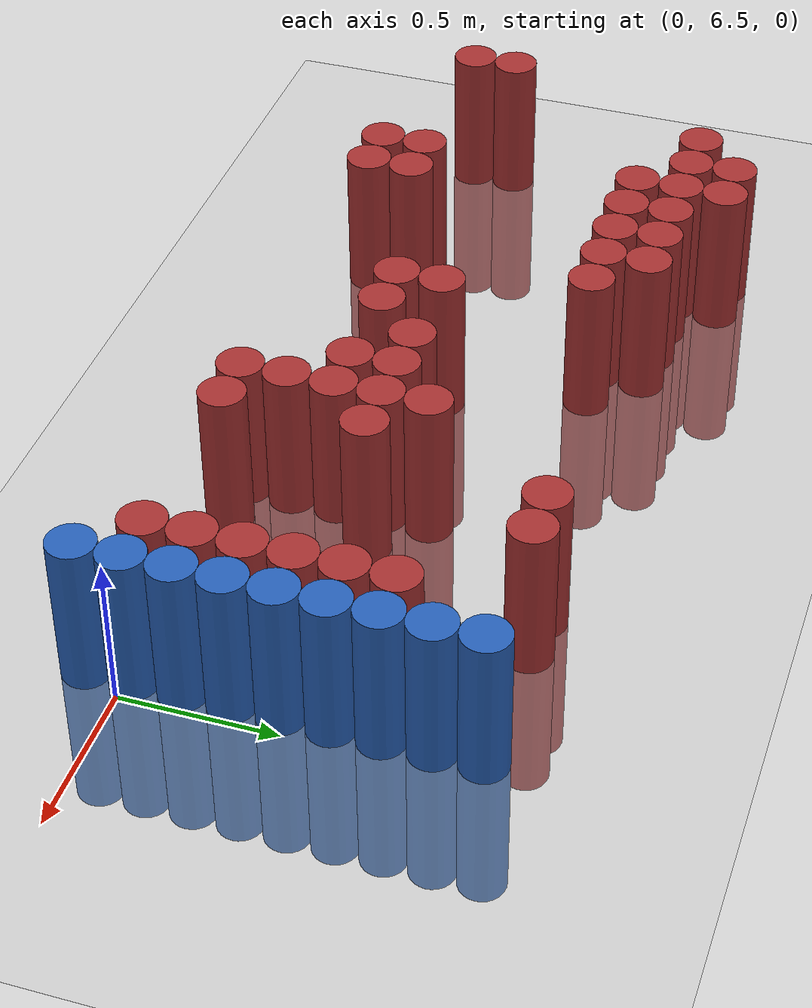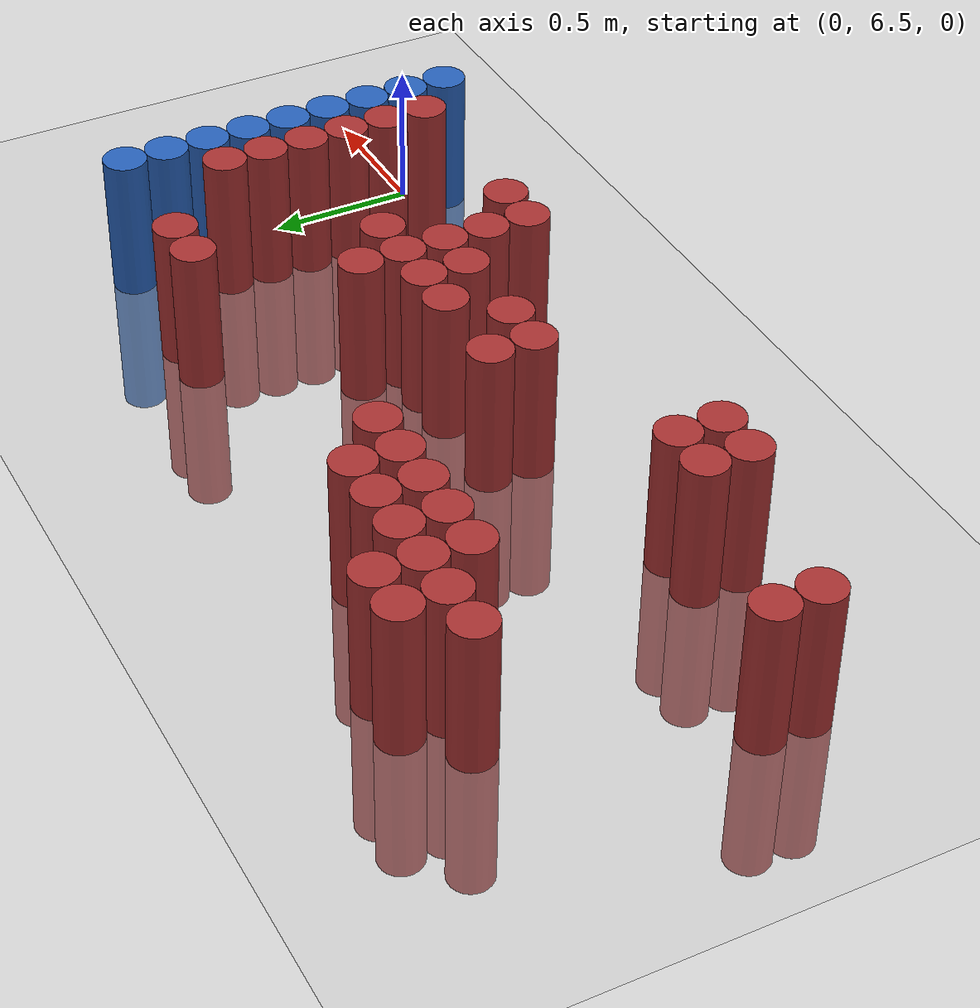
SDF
<sdf version="1.6">
 <world name="default">
  <model name="ground_plane">
   <static>1</static>
   <link name="link">
    <collision name="collision">
     <geometry><plane><normal>0 0 1</normal><size>100 100</size></plane></geometry>
     <surface><friction><ode><mu>100</mu><mu2>50</mu2></ode></friction></surface>
    </collision>
    <visual name="visual">
     <cast_shadows>0</cast_shadows>
     <geometry><plane><normal>0 0 1</normal><size>100 100</size></plane></geometry>
     <material>
      <script><uri>file://media/materials/scripts/gazebo.material</uri><name>Gazebo/Grey</name></script>
     </material>
    </visual>
   </link>
  </model>
  <model name="unit_cylinder_160">
   <static>1</static>
   <pose>-2.925000 6.675000 0.000000 0.000000 0.000000 0.000000</pose>
   <link name="link">
    <inertial>
     <mass>1</mass>
     <inertia><ixx>0.145833</ixx><ixy>0</ixy><ixz>0</ixz><iyy>0.145833</iyy><iyz>0</iyz><izz>0.125</izz></inertia>
    </inertial>
    <collision name="collision">
     <geometry><cylinder><radius>0.075000</radius><length>1</length></cylinder></geometry>
    </collision>
    <visual name="visual">
     <geometry><cylinder><radius>0.075000</radius><length>1</length></cylinder></geometry>
     <material>
      <ambient>0.648000 0.192000 0.192000 1</ambient>
      <diffuse>0.648000 0.192000 0.192000 1</diffuse>
     </material>
     <material>
      <script><name>Gazebo/Grey</name><uri>file://media/materials/scripts/gazebo.material</uri></script>
     </material>
    </visual>
   </link>
  </model>
  <model name="unit_cylinder_161">
   <static>1</static>
   <pose>-2.925000 6.825000 0.000000 0.000000 0.000000 0.000000</pose>
   <link name="link">
    <inertial>
     <mass>1</mass>
     <inertia><ixx>0.145833</ixx><ixy>0</ixy><ixz>0</ixz><iyy>0.145833</iyy><iyz>0</iyz><izz>0.125</izz></inertia>
    </inertial>
    <collision name="collision">
     <geometry><cylinder><radius>0.075000</radius><length>1</length></cylinder></geometry>
    </collision>
    <visual name="visual">
     <geometry><cylinder><radius>0.075000</radius><length>1</length></cylinder></geometry>
     <material>
      <ambient>0.648000 0.192000 0.192000 1</ambient>
      <diffuse>0.648000 0.192000 0.192000 1</diffuse>
     </material>
     <material>
      <script><name>Gazebo/Grey</name><uri>file://media/materials/scripts/gazebo.material</uri></script>
     </material>
    </visual>
   </link>
  </model>
  <model name="unit_cylinder_166">
   <static>1</static>
   <pose>-2.625000 7.575000 0.000000 0.000000 0.000000 0.000000</pose>
   <link name="link">
    <inertial>
     <mass>1</mass>
     <inertia><ixx>0.145833</ixx><ixy>0</ixy><ixz>0</ixz><iyy>0.145833</iyy><iyz>0</iyz><izz>0.125</izz></inertia>
    </inertial>
    <collision name="collision">
     <geometry><cylinder><radius>0.075000</radius><length>1</length></cylinder></geometry>
    </collision>
    <visual name="visual">
     <geometry><cylinder><radius>0.075000</radius><length>1</length></cylinder></geometry>
     <material>
      <ambient>0.648000 0.192000 0.192000 1</ambient>
      <diffuse>0.648000 0.192000 0.192000 1</diffuse>
     </material>
     <material>
      <script><name>Gazebo/Grey</name><uri>file://media/materials/scripts/gazebo.material</uri></script>
     </material>
    </visual>
   </link>
  </model>
  <model name="unit_cylinder_167">
   <static>1</static>
   <pose>-2.475000 7.575000 0.000000 0.000000 0.000000 0.000000</pose>
   <link name="link">
    <inertial>
     <mass>1</mass>
     <inertia><ixx>0.145833</ixx><ixy>0</ixy><ixz>0</ixz><iyy>0.145833</iyy><iyz>0</iyz><izz>0.125</izz></inertia>
    </inertial>
    <collision name="collision">
     <geometry><cylinder><radius>0.075000</radius><length>1</length></cylinder></geometry>
    </collision>
    <visual name="visual">
     <geometry><cylinder><radius>0.075000</radius><length>1</length></cylinder></geometry>
     <material>
      <ambient>0.648000 0.192000 0.192000 1</ambient>
      <diffuse>0.648000 0.192000 0.192000 1</diffuse>
     </material>
     <material>
      <script><name>Gazebo/Grey</name><uri>file://media/materials/scripts/gazebo.material</uri></script>
     </material>
    </visual>
   </link>
  </model>
  <model name="unit_cylinder_168">
   <static>1</static>
   <pose>-2.475000 7.725000 0.000000 0.000000 0.000000 0.000000</pose>
   <link name="link">
    <inertial>
     <mass>1</mass>
     <inertia><ixx>0.145833</ixx><ixy>0</ixy><ixz>0</ixz><iyy>0.145833</iyy><iyz>0</iyz><izz>0.125</izz></inertia>
    </inertial>
    <collision name="collision">
     <geometry><cylinder><radius>0.075000</radius><length>1</length></cylinder></geometry>
    </collision>
    <visual name="visual">
     <geometry><cylinder><radius>0.075000</radius><length>1</length></cylinder></geometry>
     <material>
      <ambient>0.648000 0.192000 0.192000 1</ambient>
      <diffuse>0.648000 0.192000 0.192000 1</diffuse>
     </material>
     <material>
      <script><name>Gazebo/Grey</name><uri>file://media/materials/scripts/gazebo.material</uri></script>
     </material>
    </visual>
   </link>
  </model>
  <model name="unit_cylinder_171">
   <static>1</static>
   <pose>-2.325000 6.525000 0.000000 0.000000 0.000000 0.000000</pose>
   <link name="link">
    <inertial>
     <mass>1</mass>
     <inertia><ixx>0.145833</ixx><ixy>0</ixy><ixz>0</ixz><iyy>0.145833</iyy><iyz>0</iyz><izz>0.125</izz></inertia>
    </inertial>
    <collision name="collision">
     <geometry><cylinder><radius>0.075000</radius><length>1</length></cylinder></geometry>
    </collision>
    <visual name="visual">
     <geometry><cylinder><radius>0.075000</radius><length>1</length></cylinder></geometry>
     <material>
      <ambient>0.648000 0.192000 0.192000 1</ambient>
      <diffuse>0.648000 0.192000 0.192000 1</diffuse>
     </material>
     <material>
      <script><name>Gazebo/Grey</name><uri>file://media/materials/scripts/gazebo.material</uri></script>
     </material>
    </visual>
   </link>
  </model>
  <model name="unit_cylinder_172">
   <static>1</static>
   <pose>-2.325000 6.675000 0.000000 0.000000 0.000000 0.000000</pose>
   <link name="link">
    <inertial>
     <mass>1</mass>
     <inertia><ixx>0.145833</ixx><ixy>0</ixy><ixz>0</ixz><iyy>0.145833</iyy><iyz>0</iyz><izz>0.125</izz></inertia>
    </inertial>
    <collision name="collision">
     <geometry><cylinder><radius>0.075000</radius><length>1</length></cylinder></geometry>
    </collision>
    <visual name="visual">
     <geometry><cylinder><radius>0.075000</radius><length>1</length></cylinder></geometry>
     <material>
      <ambient>0.648000 0.192000 0.192000 1</ambient>
      <diffuse>0.648000 0.192000 0.192000 1</diffuse>
     </material>
     <material>
      <script><name>Gazebo/Grey</name><uri>file://media/materials/scripts/gazebo.material</uri></script>
     </material>
    </visual>
   </link>
  </model>
  <model name="unit_cylinder_173">
   <static>1</static>
   <pose>-2.325000 7.425000 0.000000 0.000000 0.000000 0.000000</pose>
   <link name="link">
    <inertial>
     <mass>1</mass>
     <inertia><ixx>0.145833</ixx><ixy>0</ixy><ixz>0</ixz><iyy>0.145833</iyy><iyz>0</iyz><izz>0.125</izz></inertia>
    </inertial>
    <collision name="collision">
     <geometry><cylinder><radius>0.075000</radius><length>1</length></cylinder></geometry>
    </collision>
    <visual name="visual">
     <geometry><cylinder><radius>0.075000</radius><length>1</length></cylinder></geometry>
     <material>
      <ambient>0.648000 0.192000 0.192000 1</ambient>
      <diffuse>0.648000 0.192000 0.192000 1</diffuse>
     </material>
     <material>
      <script><name>Gazebo/Grey</name><uri>file://media/materials/scripts/gazebo.material</uri></script>
     </material>
    </visual>
   </link>
  </model>
  <model name="unit_cylinder_174">
   <static>1</static>
   <pose>-2.325000 7.575000 0.000000 0.000000 0.000000 0.000000</pose>
   <link name="link">
    <inertial>
     <mass>1</mass>
     <inertia><ixx>0.145833</ixx><ixy>0</ixy><ixz>0</ixz><iyy>0.145833</iyy><iyz>0</iyz><izz>0.125</izz></inertia>
    </inertial>
    <collision name="collision">
     <geometry><cylinder><radius>0.075000</radius><length>1</length></cylinder></geometry>
    </collision>
    <visual name="visual">
     <geometry><cylinder><radius>0.075000</radius><length>1</length></cylinder></geometry>
     <material>
      <ambient>0.648000 0.192000 0.192000 1</ambient>
      <diffuse>0.648000 0.192000 0.192000 1</diffuse>
     </material>
     <material>
      <script><name>Gazebo/Grey</name><uri>file://media/materials/scripts/gazebo.material</uri></script>
     </material>
    </visual>
   </link>
  </model>
  <model name="unit_cylinder_175">
   <static>1</static>
   <pose>-2.325000 7.725000 0.000000 0.000000 0.000000 0.000000</pose>
   <link name="link">
    <inertial>
     <mass>1</mass>
     <inertia><ixx>0.145833</ixx><ixy>0</ixy><ixz>0</ixz><iyy>0.145833</iyy><iyz>0</iyz><izz>0.125</izz></inertia>
    </inertial>
    <collision name="collision">
     <geometry><cylinder><radius>0.075000</radius><length>1</length></cylinder></geometry>
    </collision>
    <visual name="visual">
     <geometry><cylinder><radius>0.075000</radius><length>1</length></cylinder></geometry>
     <material>
      <ambient>0.648000 0.192000 0.192000 1</ambient>
      <diffuse>0.648000 0.192000 0.192000 1</diffuse>
     </material>
     <material>
      <script><name>Gazebo/Grey</name><uri>file://media/materials/scripts/gazebo.material</uri></script>
     </material>
    </visual>
   </link>
  </model>
  <model name="unit_cylinder_177">
   <static>1</static>
   <pose>-2.175000 6.525000 0.000000 0.000000 0.000000 0.000000</pose>
   <link name="link">
    <inertial>
     <mass>1</mass>
     <inertia><ixx>0.145833</ixx><ixy>0</ixy><ixz>0</ixz><iyy>0.145833</iyy><iyz>0</iyz><izz>0.125</izz></inertia>
    </inertial>
    <collision name="collision">
     <geometry><cylinder><radius>0.075000</radius><length>1</length></cylinder></geometry>
    </collision>
    <visual name="visual">
     <geometry><cylinder><radius>0.075000</radius><length>1</length></cylinder></geometry>
     <material>
      <ambient>0.648000 0.192000 0.192000 1</ambient>
      <diffuse>0.648000 0.192000 0.192000 1</diffuse>
     </material>
     <material>
      <script><name>Gazebo/Grey</name><uri>file://media/materials/scripts/gazebo.material</uri></script>
     </material>
    </visual>
   </link>
  </model>
  <model name="unit_cylinder_178">
   <static>1</static>
   <pose>-2.175000 6.675000 0.000000 0.000000 0.000000 0.000000</pose>
   <link name="link">
    <inertial>
     <mass>1</mass>
     <inertia><ixx>0.145833</ixx><ixy>0</ixy><ixz>0</ixz><iyy>0.145833</iyy><iyz>0</iyz><izz>0.125</izz></inertia>
    </inertial>
    <collision name="collision">
     <geometry><cylinder><radius>0.075000</radius><length>1</length></cylinder></geometry>
    </collision>
    <visual name="visual">
     <geometry><cylinder><radius>0.075000</radius><length>1</length></cylinder></geometry>
     <material>
      <ambient>0.648000 0.192000 0.192000 1</ambient>
      <diffuse>0.648000 0.192000 0.192000 1</diffuse>
     </material>
     <material>
      <script><name>Gazebo/Grey</name><uri>file://media/materials/scripts/gazebo.material</uri></script>
     </material>
    </visual>
   </link>
  </model>
  <model name="unit_cylinder_179">
   <static>1</static>
   <pose>-2.175000 7.425000 0.000000 0.000000 0.000000 0.000000</pose>
   <link name="link">
    <inertial>
     <mass>1</mass>
     <inertia><ixx>0.145833</ixx><ixy>0</ixy><ixz>0</ixz><iyy>0.145833</iyy><iyz>0</iyz><izz>0.125</izz></inertia>
    </inertial>
    <collision name="collision">
     <geometry><cylinder><radius>0.075000</radius><length>1</length></cylinder></geometry>
    </collision>
    <visual name="visual">
     <geometry><cylinder><radius>0.075000</radius><length>1</length></cylinder></geometry>
     <material>
      <ambient>0.648000 0.192000 0.192000 1</ambient>
      <diffuse>0.648000 0.192000 0.192000 1</diffuse>
     </material>
     <material>
      <script><name>Gazebo/Grey</name><uri>file://media/materials/scripts/gazebo.material</uri></script>
     </material>
    </visual>
   </link>
  </model>
  <model name="unit_cylinder_180">
   <static>1</static>
   <pose>-2.175000 7.575000 0.000000 0.000000 0.000000 0.000000</pose>
   <link name="link">
    <inertial>
     <mass>1</mass>
     <inertia><ixx>0.145833</ixx><ixy>0</ixy><ixz>0</ixz><iyy>0.145833</iyy><iyz>0</iyz><izz>0.125</izz></inertia>
    </inertial>
    <collision name="collision">
     <geometry><cylinder><radius>0.075000</radius><length>1</length></cylinder></geometry>
    </collision>
    <visual name="visual">
     <geometry><cylinder><radius>0.075000</radius><length>1</length></cylinder></geometry>
     <material>
      <ambient>0.648000 0.192000 0.192000 1</ambient>
      <diffuse>0.648000 0.192000 0.192000 1</diffuse>
     </material>
     <material>
      <script><name>Gazebo/Grey</name><uri>file://media/materials/scripts/gazebo.material</uri></script>
     </material>
    </visual>
   </link>
  </model>
  <model name="unit_cylinder_182">
   <static>1</static>
   <pose>-2.025000 7.425000 0.000000 0.000000 0.000000 0.000000</pose>
   <link name="link">
    <inertial>
     <mass>1</mass>
     <inertia><ixx>0.145833</ixx><ixy>0</ixy><ixz>0</ixz><iyy>0.145833</iyy><iyz>0</iyz><izz>0.125</izz></inertia>
    </inertial>
    <collision name="collision">
     <geometry><cylinder><radius>0.075000</radius><length>1</length></cylinder></geometry>
    </collision>
    <visual name="visual">
     <geometry><cylinder><radius>0.075000</radius><length>1</length></cylinder></geometry>
     <material>
      <ambient>0.648000 0.192000 0.192000 1</ambient>
      <diffuse>0.648000 0.192000 0.192000 1</diffuse>
     </material>
     <material>
      <script><name>Gazebo/Grey</name><uri>file://media/materials/scripts/gazebo.material</uri></script>
     </material>
    </visual>
   </link>
  </model>
  <model name="unit_cylinder_183">
   <static>1</static>
   <pose>-2.025000 7.575000 0.000000 0.000000 0.000000 0.000000</pose>
   <link name="link">
    <inertial>
     <mass>1</mass>
     <inertia><ixx>0.145833</ixx><ixy>0</ixy><ixz>0</ixz><iyy>0.145833</iyy><iyz>0</iyz><izz>0.125</izz></inertia>
    </inertial>
    <collision name="collision">
     <geometry><cylinder><radius>0.075000</radius><length>1</length></cylinder></geometry>
    </collision>
    <visual name="visual">
     <geometry><cylinder><radius>0.075000</radius><length>1</length></cylinder></geometry>
     <material>
      <ambient>0.648000 0.192000 0.192000 1</ambient>
      <diffuse>0.648000 0.192000 0.192000 1</diffuse>
     </material>
     <material>
      <script><name>Gazebo/Grey</name><uri>file://media/materials/scripts/gazebo.material</uri></script>
     </material>
    </visual>
   </link>
  </model>
  <model name="unit_cylinder_185">
   <static>1</static>
   <pose>-1.875000 7.425000 0.000000 0.000000 0.000000 0.000000</pose>
   <link name="link">
    <inertial>
     <mass>1</mass>
     <inertia><ixx>0.145833</ixx><ixy>0</ixy><ixz>0</ixz><iyy>0.145833</iyy><iyz>0</iyz><izz>0.125</izz></inertia>
    </inertial>
    <collision name="collision">
     <geometry><cylinder><radius>0.075000</radius><length>1</length></cylinder></geometry>
    </collision>
    <visual name="visual">
     <geometry><cylinder><radius>0.075000</radius><length>1</length></cylinder></geometry>
     <material>
      <ambient>0.648000 0.192000 0.192000 1</ambient>
      <diffuse>0.648000 0.192000 0.192000 1</diffuse>
     </material>
     <material>
      <script><name>Gazebo/Grey</name><uri>file://media/materials/scripts/gazebo.material</uri></script>
     </material>
    </visual>
   </link>
  </model>
  <model name="unit_cylinder_186">
   <static>1</static>
   <pose>-1.875000 7.575000 0.000000 0.000000 0.000000 0.000000</pose>
   <link name="link">
    <inertial>
     <mass>1</mass>
     <inertia><ixx>0.145833</ixx><ixy>0</ixy><ixz>0</ixz><iyy>0.145833</iyy><iyz>0</iyz><izz>0.125</izz></inertia>
    </inertial>
    <collision name="collision">
     <geometry><cylinder><radius>0.075000</radius><length>1</length></cylinder></geometry>
    </collision>
    <visual name="visual">
     <geometry><cylinder><radius>0.075000</radius><length>1</length></cylinder></geometry>
     <material>
      <ambient>0.648000 0.192000 0.192000 1</ambient>
      <diffuse>0.648000 0.192000 0.192000 1</diffuse>
     </material>
     <material>
      <script><name>Gazebo/Grey</name><uri>file://media/materials/scripts/gazebo.material</uri></script>
     </material>
    </visual>
   </link>
  </model>
  <model name="unit_cylinder_189">
   <static>1</static>
   <pose>-1.725000 7.425000 0.000000 0.000000 0.000000 0.000000</pose>
   <link name="link">
    <inertial>
     <mass>1</mass>
     <inertia><ixx>0.145833</ixx><ixy>0</ixy><ixz>0</ixz><iyy>0.145833</iyy><iyz>0</iyz><izz>0.125</izz></inertia>
    </inertial>
    <collision name="collision">
     <geometry><cylinder><radius>0.075000</radius><length>1</length></cylinder></geometry>
    </collision>
    <visual name="visual">
     <geometry><cylinder><radius>0.075000</radius><length>1</length></cylinder></geometry>
     <material>
      <ambient>0.648000 0.192000 0.192000 1</ambient>
      <diffuse>0.648000 0.192000 0.192000 1</diffuse>
     </material>
     <material>
      <script><name>Gazebo/Grey</name><uri>file://media/materials/scripts/gazebo.material</uri></script>
     </material>
    </visual>
   </link>
  </model>
  <model name="unit_cylinder_193">
   <static>1</static>
   <pose>-1.575000 6.825000 0.000000 0.000000 0.000000 0.000000</pose>
   <link name="link">
    <inertial>
     <mass>1</mass>
     <inertia><ixx>0.145833</ixx><ixy>0</ixy><ixz>0</ixz><iyy>0.145833</iyy><iyz>0</iyz><izz>0.125</izz></inertia>
    </inertial>
    <collision name="collision">
     <geometry><cylinder><radius>0.075000</radius><length>1</length></cylinder></geometry>
    </collision>
    <visual name="visual">
     <geometry><cylinder><radius>0.075000</radius><length>1</length></cylinder></geometry>
     <material>
      <ambient>0.648000 0.192000 0.192000 1</ambient>
      <diffuse>0.648000 0.192000 0.192000 1</diffuse>
     </material>
     <material>
      <script><name>Gazebo/Grey</name><uri>file://media/materials/scripts/gazebo.material</uri></script>
     </material>
    </visual>
   </link>
  </model>
  <model name="unit_cylinder_194">
   <static>1</static>
   <pose>-1.575000 6.975000 0.000000 0.000000 0.000000 0.000000</pose>
   <link name="link">
    <inertial>
     <mass>1</mass>
     <inertia><ixx>0.145833</ixx><ixy>0</ixy><ixz>0</ixz><iyy>0.145833</iyy><iyz>0</iyz><izz>0.125</izz></inertia>
    </inertial>
    <collision name="collision">
     <geometry><cylinder><radius>0.075000</radius><length>1</length></cylinder></geometry>
    </collision>
    <visual name="visual">
     <geometry><cylinder><radius>0.075000</radius><length>1</length></cylinder></geometry>
     <material>
      <ambient>0.648000 0.192000 0.192000 1</ambient>
      <diffuse>0.648000 0.192000 0.192000 1</diffuse>
     </material>
     <material>
      <script><name>Gazebo/Grey</name><uri>file://media/materials/scripts/gazebo.material</uri></script>
     </material>
    </visual>
   </link>
  </model>
  <model name="unit_cylinder_196">
   <static>1</static>
   <pose>-1.425000 6.825000 0.000000 0.000000 0.000000 0.000000</pose>
   <link name="link">
    <inertial>
     <mass>1</mass>
     <inertia><ixx>0.145833</ixx><ixy>0</ixy><ixz>0</ixz><iyy>0.145833</iyy><iyz>0</iyz><izz>0.125</izz></inertia>
    </inertial>
    <collision name="collision">
     <geometry><cylinder><radius>0.075000</radius><length>1</length></cylinder></geometry>
    </collision>
    <visual name="visual">
     <geometry><cylinder><radius>0.075000</radius><length>1</length></cylinder></geometry>
     <material>
      <ambient>0.648000 0.192000 0.192000 1</ambient>
      <diffuse>0.648000 0.192000 0.192000 1</diffuse>
     </material>
     <material>
      <script><name>Gazebo/Grey</name><uri>file://media/materials/scripts/gazebo.material</uri></script>
     </material>
    </visual>
   </link>
  </model>
  <model name="unit_cylinder_198">
   <static>1</static>
   <pose>-1.275000 6.975000 0.000000 0.000000 0.000000 0.000000</pose>
   <link name="link">
    <inertial>
     <mass>1</mass>
     <inertia><ixx>0.145833</ixx><ixy>0</ixy><ixz>0</ixz><iyy>0.145833</iyy><iyz>0</iyz><izz>0.125</izz></inertia>
    </inertial>
    <collision name="collision">
     <geometry><cylinder><radius>0.075000</radius><length>1</length></cylinder></geometry>
    </collision>
    <visual name="visual">
     <geometry><cylinder><radius>0.075000</radius><length>1</length></cylinder></geometry>
     <material>
      <ambient>0.648000 0.192000 0.192000 1</ambient>
      <diffuse>0.648000 0.192000 0.192000 1</diffuse>
     </material>
     <material>
      <script><name>Gazebo/Grey</name><uri>file://media/materials/scripts/gazebo.material</uri></script>
     </material>
    </visual>
   </link>
  </model>
  <model name="unit_cylinder_203">
   <static>1</static>
   <pose>-1.125000 6.825000 0.000000 0.000000 0.000000 0.000000</pose>
   <link name="link">
    <inertial>
     <mass>1</mass>
     <inertia><ixx>0.145833</ixx><ixy>0</ixy><ixz>0</ixz><iyy>0.145833</iyy><iyz>0</iyz><izz>0.125</izz></inertia>
    </inertial>
    <collision name="collision">
     <geometry><cylinder><radius>0.075000</radius><length>1</length></cylinder></geometry>
    </collision>
    <visual name="visual">
     <geometry><cylinder><radius>0.075000</radius><length>1</length></cylinder></geometry>
     <material>
      <ambient>0.648000 0.192000 0.192000 1</ambient>
      <diffuse>0.648000 0.192000 0.192000 1</diffuse>
     </material>
     <material>
      <script><name>Gazebo/Grey</name><uri>file://media/materials/scripts/gazebo.material</uri></script>
     </material>
    </visual>
   </link>
  </model>
  <model name="unit_cylinder_204">
   <static>1</static>
   <pose>-1.125000 6.975000 0.000000 0.000000 0.000000 0.000000</pose>
   <link name="link">
    <inertial>
     <mass>1</mass>
     <inertia><ixx>0.145833</ixx><ixy>0</ixy><ixz>0</ixz><iyy>0.145833</iyy><iyz>0</iyz><izz>0.125</izz></inertia>
    </inertial>
    <collision name="collision">
     <geometry><cylinder><radius>0.075000</radius><length>1</length></cylinder></geometry>
    </collision>
    <visual name="visual">
     <geometry><cylinder><radius>0.075000</radius><length>1</length></cylinder></geometry>
     <material>
      <ambient>0.648000 0.192000 0.192000 1</ambient>
      <diffuse>0.648000 0.192000 0.192000 1</diffuse>
     </material>
     <material>
      <script><name>Gazebo/Grey</name><uri>file://media/materials/scripts/gazebo.material</uri></script>
     </material>
    </visual>
   </link>
  </model>
  <model name="unit_cylinder_210">
   <static>1</static>
   <pose>-0.975000 6.525000 0.000000 0.000000 0.000000 0.000000</pose>
   <link name="link">
    <inertial>
     <mass>1</mass>
     <inertia><ixx>0.145833</ixx><ixy>0</ixy><ixz>0</ixz><iyy>0.145833</iyy><iyz>0</iyz><izz>0.125</izz></inertia>
    </inertial>
    <collision name="collision">
     <geometry><cylinder><radius>0.075000</radius><length>1</length></cylinder></geometry>
    </collision>
    <visual name="visual">
     <geometry><cylinder><radius>0.075000</radius><length>1</length></cylinder></geometry>
     <material>
      <ambient>0.648000 0.192000 0.192000 1</ambient>
      <diffuse>0.648000 0.192000 0.192000 1</diffuse>
     </material>
     <material>
      <script><name>Gazebo/Grey</name><uri>file://media/materials/scripts/gazebo.material</uri></script>
     </material>
    </visual>
   </link>
  </model>
  <model name="unit_cylinder_211">
   <static>1</static>
   <pose>-0.975000 6.675000 0.000000 0.000000 0.000000 0.000000</pose>
   <link name="link">
    <inertial>
     <mass>1</mass>
     <inertia><ixx>0.145833</ixx><ixy>0</ixy><ixz>0</ixz><iyy>0.145833</iyy><iyz>0</iyz><izz>0.125</izz></inertia>
    </inertial>
    <collision name="collision">
     <geometry><cylinder><radius>0.075000</radius><length>1</length></cylinder></geometry>
    </collision>
    <visual name="visual">
     <geometry><cylinder><radius>0.075000</radius><length>1</length></cylinder></geometry>
     <material>
      <ambient>0.648000 0.192000 0.192000 1</ambient>
      <diffuse>0.648000 0.192000 0.192000 1</diffuse>
     </material>
     <material>
      <script><name>Gazebo/Grey</name><uri>file://media/materials/scripts/gazebo.material</uri></script>
     </material>
    </visual>
   </link>
  </model>
  <model name="unit_cylinder_212">
   <static>1</static>
   <pose>-0.975000 6.825000 0.000000 0.000000 0.000000 0.000000</pose>
   <link name="link">
    <inertial>
     <mass>1</mass>
     <inertia><ixx>0.145833</ixx><ixy>0</ixy><ixz>0</ixz><iyy>0.145833</iyy><iyz>0</iyz><izz>0.125</izz></inertia>
    </inertial>
    <collision name="collision">
     <geometry><cylinder><radius>0.075000</radius><length>1</length></cylinder></geometry>
    </collision>
    <visual name="visual">
     <geometry><cylinder><radius>0.075000</radius><length>1</length></cylinder></geometry>
     <material>
      <ambient>0.648000 0.192000 0.192000 1</ambient>
      <diffuse>0.648000 0.192000 0.192000 1</diffuse>
     </material>
     <material>
      <script><name>Gazebo/Grey</name><uri>file://media/materials/scripts/gazebo.material</uri></script>
     </material>
    </visual>
   </link>
  </model>
  <model name="unit_cylinder_213">
   <static>1</static>
   <pose>-0.975000 6.975000 0.000000 0.000000 0.000000 0.000000</pose>
   <link name="link">
    <inertial>
     <mass>1</mass>
     <inertia><ixx>0.145833</ixx><ixy>0</ixy><ixz>0</ixz><iyy>0.145833</iyy><iyz>0</iyz><izz>0.125</izz></inertia>
    </inertial>
    <collision name="collision">
     <geometry><cylinder><radius>0.075000</radius><length>1</length></cylinder></geometry>
    </collision>
    <visual name="visual">
     <geometry><cylinder><radius>0.075000</radius><length>1</length></cylinder></geometry>
     <material>
      <ambient>0.648000 0.192000 0.192000 1</ambient>
      <diffuse>0.648000 0.192000 0.192000 1</diffuse>
     </material>
     <material>
      <script><name>Gazebo/Grey</name><uri>file://media/materials/scripts/gazebo.material</uri></script>
     </material>
    </visual>
   </link>
  </model>
  <model name="unit_cylinder_214">
   <static>1</static>
   <pose>-0.975000 7.125000 0.000000 0.000000 0.000000 0.000000</pose>
   <link name="link">
    <inertial>
     <mass>1</mass>
     <inertia><ixx>0.145833</ixx><ixy>0</ixy><ixz>0</ixz><iyy>0.145833</iyy><iyz>0</iyz><izz>0.125</izz></inertia>
    </inertial>
    <collision name="collision">
     <geometry><cylinder><radius>0.075000</radius><length>1</length></cylinder></geometry>
    </collision>
    <visual name="visual">
     <geometry><cylinder><radius>0.075000</radius><length>1</length></cylinder></geometry>
     <material>
      <ambient>0.648000 0.192000 0.192000 1</ambient>
      <diffuse>0.648000 0.192000 0.192000 1</diffuse>
     </material>
     <material>
      <script><name>Gazebo/Grey</name><uri>file://media/materials/scripts/gazebo.material</uri></script>
     </material>
    </visual>
   </link>
  </model>
  <model name="unit_cylinder_225">
   <static>1</static>
   <pose>-0.825000 6.525000 0.000000 0.000000 0.000000 0.000000</pose>
   <link name="link">
    <inertial>
     <mass>1</mass>
     <inertia><ixx>0.145833</ixx><ixy>0</ixy><ixz>0</ixz><iyy>0.145833</iyy><iyz>0</iyz><izz>0.125</izz></inertia>
    </inertial>
    <collision name="collision">
     <geometry><cylinder><radius>0.075000</radius><length>1</length></cylinder></geometry>
    </collision>
    <visual name="visual">
     <geometry><cylinder><radius>0.075000</radius><length>1</length></cylinder></geometry>
     <material>
      <ambient>0.648000 0.192000 0.192000 1</ambient>
      <diffuse>0.648000 0.192000 0.192000 1</diffuse>
     </material>
     <material>
      <script><name>Gazebo/Grey</name><uri>file://media/materials/scripts/gazebo.material</uri></script>
     </material>
    </visual>
   </link>
  </model>
  <model name="unit_cylinder_226">
   <static>1</static>
   <pose>-0.825000 6.975000 0.000000 0.000000 0.000000 0.000000</pose>
   <link name="link">
    <inertial>
     <mass>1</mass>
     <inertia><ixx>0.145833</ixx><ixy>0</ixy><ixz>0</ixz><iyy>0.145833</iyy><iyz>0</iyz><izz>0.125</izz></inertia>
    </inertial>
    <collision name="collision">
     <geometry><cylinder><radius>0.075000</radius><length>1</length></cylinder></geometry>
    </collision>
    <visual name="visual">
     <geometry><cylinder><radius>0.075000</radius><length>1</length></cylinder></geometry>
     <material>
      <ambient>0.648000 0.192000 0.192000 1</ambient>
      <diffuse>0.648000 0.192000 0.192000 1</diffuse>
     </material>
     <material>
      <script><name>Gazebo/Grey</name><uri>file://media/materials/scripts/gazebo.material</uri></script>
     </material>
    </visual>
   </link>
  </model>
  <model name="unit_cylinder_240">
   <static>1</static>
   <pose>-0.675000 7.575000 0.000000 0.000000 0.000000 0.000000</pose>
   <link name="link">
    <inertial>
     <mass>1</mass>
     <inertia><ixx>0.145833</ixx><ixy>0</ixy><ixz>0</ixz><iyy>0.145833</iyy><iyz>0</iyz><izz>0.125</izz></inertia>
    </inertial>
    <collision name="collision">
     <geometry><cylinder><radius>0.075000</radius><length>1</length></cylinder></geometry>
    </collision>
    <visual name="visual">
     <geometry><cylinder><radius>0.075000</radius><length>1</length></cylinder></geometry>
     <material>
      <ambient>0.648000 0.192000 0.192000 1</ambient>
      <diffuse>0.648000 0.192000 0.192000 1</diffuse>
     </material>
     <material>
      <script><name>Gazebo/Grey</name><uri>file://media/materials/scripts/gazebo.material</uri></script>
     </material>
    </visual>
   </link>
  </model>
  <model name="unit_cylinder_246">
   <static>1</static>
   <pose>-0.525000 7.575000 0.000000 0.000000 0.000000 0.000000</pose>
   <link name="link">
    <inertial>
     <mass>1</mass>
     <inertia><ixx>0.145833</ixx><ixy>0</ixy><ixz>0</ixz><iyy>0.145833</iyy><iyz>0</iyz><izz>0.125</izz></inertia>
    </inertial>
    <collision name="collision">
     <geometry><cylinder><radius>0.075000</radius><length>1</length></cylinder></geometry>
    </collision>
    <visual name="visual">
     <geometry><cylinder><radius>0.075000</radius><length>1</length></cylinder></geometry>
     <material>
      <ambient>0.648000 0.192000 0.192000 1</ambient>
      <diffuse>0.648000 0.192000 0.192000 1</diffuse>
     </material>
     <material>
      <script><name>Gazebo/Grey</name><uri>file://media/materials/scripts/gazebo.material</uri></script>
     </material>
    </visual>
   </link>
  </model>
  <model name="unit_cylinder_255">
   <static>1</static>
   <pose>-0.225000 6.525000 0.000000 0.000000 0.000000 0.000000</pose>
   <link name="link">
    <inertial>
     <mass>1</mass>
     <inertia><ixx>0.145833</ixx><ixy>0</ixy><ixz>0</ixz><iyy>0.145833</iyy><iyz>0</iyz><izz>0.125</izz></inertia>
    </inertial>
    <collision name="collision">
     <geometry><cylinder><radius>0.075000</radius><length>1</length></cylinder></geometry>
    </collision>
    <visual name="visual">
     <geometry><cylinder><radius>0.075000</radius><length>1</length></cylinder></geometry>
     <material>
      <ambient>0.648000 0.192000 0.192000 1</ambient>
      <diffuse>0.648000 0.192000 0.192000 1</diffuse>
     </material>
     <material>
      <script><name>Gazebo/Grey</name><uri>file://media/materials/scripts/gazebo.material</uri></script>
     </material>
    </visual>
   </link>
  </model>
  <model name="unit_cylinder_256">
   <static>1</static>
   <pose>-0.225000 6.675000 0.000000 0.000000 0.000000 0.000000</pose>
   <link name="link">
    <inertial>
     <mass>1</mass>
     <inertia><ixx>0.145833</ixx><ixy>0</ixy><ixz>0</ixz><iyy>0.145833</iyy><iyz>0</iyz><izz>0.125</izz></inertia>
    </inertial>
    <collision name="collision">
     <geometry><cylinder><radius>0.075000</radius><length>1</length></cylinder></geometry>
    </collision>
    <visual name="visual">
     <geometry><cylinder><radius>0.075000</radius><length>1</length></cylinder></geometry>
     <material>
      <ambient>0.648000 0.192000 0.192000 1</ambient>
      <diffuse>0.648000 0.192000 0.192000 1</diffuse>
     </material>
     <material>
      <script><name>Gazebo/Grey</name><uri>file://media/materials/scripts/gazebo.material</uri></script>
     </material>
    </visual>
   </link>
  </model>
  <model name="unit_cylinder_257">
   <static>1</static>
   <pose>-0.225000 6.825000 0.000000 0.000000 0.000000 0.000000</pose>
   <link name="link">
    <inertial>
     <mass>1</mass>
     <inertia><ixx>0.145833</ixx><ixy>0</ixy><ixz>0</ixz><iyy>0.145833</iyy><iyz>0</iyz><izz>0.125</izz></inertia>
    </inertial>
    <collision name="collision">
     <geometry><cylinder><radius>0.075000</radius><length>1</length></cylinder></geometry>
    </collision>
    <visual name="visual">
     <geometry><cylinder><radius>0.075000</radius><length>1</length></cylinder></geometry>
     <material>
      <ambient>0.648000 0.192000 0.192000 1</ambient>
      <diffuse>0.648000 0.192000 0.192000 1</diffuse>
     </material>
     <material>
      <script><name>Gazebo/Grey</name><uri>file://media/materials/scripts/gazebo.material</uri></script>
     </material>
    </visual>
   </link>
  </model>
  <model name="unit_cylinder_258">
   <static>1</static>
   <pose>-0.225000 6.975000 0.000000 0.000000 0.000000 0.000000</pose>
   <link name="link">
    <inertial>
     <mass>1</mass>
     <inertia><ixx>0.145833</ixx><ixy>0</ixy><ixz>0</ixz><iyy>0.145833</iyy><iyz>0</iyz><izz>0.125</izz></inertia>
    </inertial>
    <collision name="collision">
     <geometry><cylinder><radius>0.075000</radius><length>1</length></cylinder></geometry>
    </collision>
    <visual name="visual">
     <geometry><cylinder><radius>0.075000</radius><length>1</length></cylinder></geometry>
     <material>
      <ambient>0.648000 0.192000 0.192000 1</ambient>
      <diffuse>0.648000 0.192000 0.192000 1</diffuse>
     </material>
     <material>
      <script><name>Gazebo/Grey</name><uri>file://media/materials/scripts/gazebo.material</uri></script>
     </material>
    </visual>
   </link>
  </model>
  <model name="unit_cylinder_259">
   <static>1</static>
   <pose>-0.225000 7.125000 0.000000 0.000000 0.000000 0.000000</pose>
   <link name="link">
    <inertial>
     <mass>1</mass>
     <inertia><ixx>0.145833</ixx><ixy>0</ixy><ixz>0</ixz><iyy>0.145833</iyy><iyz>0</iyz><izz>0.125</izz></inertia>
    </inertial>
    <collision name="collision">
     <geometry><cylinder><radius>0.075000</radius><length>1</length></cylinder></geometry>
    </collision>
    <visual name="visual">
     <geometry><cylinder><radius>0.075000</radius><length>1</length></cylinder></geometry>
     <material>
      <ambient>0.648000 0.192000 0.192000 1</ambient>
      <diffuse>0.648000 0.192000 0.192000 1</diffuse>
     </material>
     <material>
      <script><name>Gazebo/Grey</name><uri>file://media/materials/scripts/gazebo.material</uri></script>
     </material>
    </visual>
   </link>
  </model>
  <model name="unit_cylinder_260">
   <static>1</static>
   <pose>-0.225000 7.275000 0.000000 0.000000 0.000000 0.000000</pose>
   <link name="link">
    <inertial>
     <mass>1</mass>
     <inertia><ixx>0.145833</ixx><ixy>0</ixy><ixz>0</ixz><iyy>0.145833</iyy><iyz>0</iyz><izz>0.125</izz></inertia>
    </inertial>
    <collision name="collision">
     <geometry><cylinder><radius>0.075000</radius><length>1</length></cylinder></geometry>
    </collision>
    <visual name="visual">
     <geometry><cylinder><radius>0.075000</radius><length>1</length></cylinder></geometry>
     <material>
      <ambient>0.648000 0.192000 0.192000 1</ambient>
      <diffuse>0.648000 0.192000 0.192000 1</diffuse>
     </material>
     <material>
      <script><name>Gazebo/Grey</name><uri>file://media/materials/scripts/gazebo.material</uri></script>
     </material>
    </visual>
   </link>
  </model>
  <model name="unit_cylinder_272">
   <static>1</static>
   <pose>-0.075000 6.375000 0.000000 0.000000 0.000000 0.000000</pose>
   <link name="link">
    <inertial>
     <mass>1</mass>
     <inertia><ixx>0.145833</ixx><ixy>0</ixy><ixz>0</ixz><iyy>0.145833</iyy><iyz>0</iyz><izz>0.125</izz></inertia>
    </inertial>
    <collision name="collision">
     <geometry><cylinder><radius>0.075000</radius><length>1</length></cylinder></geometry>
    </collision>
    <visual name="visual">
     <geometry><cylinder><radius>0.075000</radius><length>1</length></cylinder></geometry>
     <material>
      <ambient>0.152000 0.379000 0.720000 1</ambient>
      <diffuse>0.152000 0.379000 0.720000 1</diffuse>
     </material>
     <material>
      <script><name>Gazebo/Grey</name><uri>file://media/materials/scripts/gazebo.material</uri></script>
     </material>
    </visual>
   </link>
  </model>
  <model name="unit_cylinder_273">
   <static>1</static>
   <pose>-0.075000 6.525000 0.000000 0.000000 0.000000 0.000000</pose>
   <link name="link">
    <inertial>
     <mass>1</mass>
     <inertia><ixx>0.145833</ixx><ixy>0</ixy><ixz>0</ixz><iyy>0.145833</iyy><iyz>0</iyz><izz>0.125</izz></inertia>
    </inertial>
    <collision name="collision">
     <geometry><cylinder><radius>0.075000</radius><length>1</length></cylinder></geometry>
    </collision>
    <visual name="visual">
     <geometry><cylinder><radius>0.075000</radius><length>1</length></cylinder></geometry>
     <material>
      <ambient>0.152000 0.379000 0.720000 1</ambient>
      <diffuse>0.152000 0.379000 0.720000 1</diffuse>
     </material>
     <material>
      <script><name>Gazebo/Grey</name><uri>file://media/materials/scripts/gazebo.material</uri></script>
     </material>
    </visual>
   </link>
  </model>
  <model name="unit_cylinder_274">
   <static>1</static>
   <pose>-0.075000 6.675000 0.000000 0.000000 0.000000 0.000000</pose>
   <link name="link">
    <inertial>
     <mass>1</mass>
     <inertia><ixx>0.145833</ixx><ixy>0</ixy><ixz>0</ixz><iyy>0.145833</iyy><iyz>0</iyz><izz>0.125</izz></inertia>
    </inertial>
    <collision name="collision">
     <geometry><cylinder><radius>0.075000</radius><length>1</length></cylinder></geometry>
    </collision>
    <visual name="visual">
     <geometry><cylinder><radius>0.075000</radius><length>1</length></cylinder></geometry>
     <material>
      <ambient>0.152000 0.379000 0.720000 1</ambient>
      <diffuse>0.152000 0.379000 0.720000 1</diffuse>
     </material>
     <material>
      <script><name>Gazebo/Grey</name><uri>file://media/materials/scripts/gazebo.material</uri></script>
     </material>
    </visual>
   </link>
  </model>
  <model name="unit_cylinder_275">
   <static>1</static>
   <pose>-0.075000 6.825000 0.000000 0.000000 0.000000 0.000000</pose>
   <link name="link">
    <inertial>
     <mass>1</mass>
     <inertia><ixx>0.145833</ixx><ixy>0</ixy><ixz>0</ixz><iyy>0.145833</iyy><iyz>0</iyz><izz>0.125</izz></inertia>
    </inertial>
    <collision name="collision">
     <geometry><cylinder><radius>0.075000</radius><length>1</length></cylinder></geometry>
    </collision>
    <visual name="visual">
     <geometry><cylinder><radius>0.075000</radius><length>1</length></cylinder></geometry>
     <material>
      <ambient>0.152000 0.379000 0.720000 1</ambient>
      <diffuse>0.152000 0.379000 0.720000 1</diffuse>
     </material>
     <material>
      <script><name>Gazebo/Grey</name><uri>file://media/materials/scripts/gazebo.material</uri></script>
     </material>
    </visual>
   </link>
  </model>
  <model name="unit_cylinder_276">
   <static>1</static>
   <pose>-0.075000 6.975000 0.000000 0.000000 0.000000 0.000000</pose>
   <link name="link">
    <inertial>
     <mass>1</mass>
     <inertia><ixx>0.145833</ixx><ixy>0</ixy><ixz>0</ixz><iyy>0.145833</iyy><iyz>0</iyz><izz>0.125</izz></inertia>
    </inertial>
    <collision name="collision">
     <geometry><cylinder><radius>0.075000</radius><length>1</length></cylinder></geometry>
    </collision>
    <visual name="visual">
     <geometry><cylinder><radius>0.075000</radius><length>1</length></cylinder></geometry>
     <material>
      <ambient>0.152000 0.379000 0.720000 1</ambient>
      <diffuse>0.152000 0.379000 0.720000 1</diffuse>
     </material>
     <material>
      <script><name>Gazebo/Grey</name><uri>file://media/materials/scripts/gazebo.material</uri></script>
     </material>
    </visual>
   </link>
  </model>
  <model name="unit_cylinder_277">
   <static>1</static>
   <pose>-0.075000 7.125000 0.000000 0.000000 0.000000 0.000000</pose>
   <link name="link">
    <inertial>
     <mass>1</mass>
     <inertia><ixx>0.145833</ixx><ixy>0</ixy><ixz>0</ixz><iyy>0.145833</iyy><iyz>0</iyz><izz>0.125</izz></inertia>
    </inertial>
    <collision name="collision">
     <geometry><cylinder><radius>0.075000</radius><length>1</length></cylinder></geometry>
    </collision>
    <visual name="visual">
     <geometry><cylinder><radius>0.075000</radius><length>1</length></cylinder></geometry>
     <material>
      <ambient>0.152000 0.379000 0.720000 1</ambient>
      <diffuse>0.152000 0.379000 0.720000 1</diffuse>
     </material>
     <material>
      <script><name>Gazebo/Grey</name><uri>file://media/materials/scripts/gazebo.material</uri></script>
     </material>
    </visual>
   </link>
  </model>
  <model name="unit_cylinder_278">
   <static>1</static>
   <pose>-0.075000 7.275000 0.000000 0.000000 0.000000 0.000000</pose>
   <link name="link">
    <inertial>
     <mass>1</mass>
     <inertia><ixx>0.145833</ixx><ixy>0</ixy><ixz>0</ixz><iyy>0.145833</iyy><iyz>0</iyz><izz>0.125</izz></inertia>
    </inertial>
    <collision name="collision">
     <geometry><cylinder><radius>0.075000</radius><length>1</length></cylinder></geometry>
    </collision>
    <visual name="visual">
     <geometry><cylinder><radius>0.075000</radius><length>1</length></cylinder></geometry>
     <material>
      <ambient>0.152000 0.379000 0.720000 1</ambient>
      <diffuse>0.152000 0.379000 0.720000 1</diffuse>
     </material>
     <material>
      <script><name>Gazebo/Grey</name><uri>file://media/materials/scripts/gazebo.material</uri></script>
     </material>
    </visual>
   </link>
  </model>
  <model name="unit_cylinder_279">
   <static>1</static>
   <pose>-0.075000 7.425000 0.000000 0.000000 0.000000 0.000000</pose>
   <link name="link">
    <inertial>
     <mass>1</mass>
     <inertia><ixx>0.145833</ixx><ixy>0</ixy><ixz>0</ixz><iyy>0.145833</iyy><iyz>0</iyz><izz>0.125</izz></inertia>
    </inertial>
    <collision name="collision">
     <geometry><cylinder><radius>0.075000</radius><length>1</length></cylinder></geometry>
    </collision>
    <visual name="visual">
     <geometry><cylinder><radius>0.075000</radius><length>1</length></cylinder></geometry>
     <material>
      <ambient>0.152000 0.379000 0.720000 1</ambient>
      <diffuse>0.152000 0.379000 0.720000 1</diffuse>
     </material>
     <material>
      <script><name>Gazebo/Grey</name><uri>file://media/materials/scripts/gazebo.material</uri></script>
     </material>
    </visual>
   </link>
  </model>
  <model name="unit_cylinder_280">
   <static>1</static>
   <pose>-0.075000 7.575000 0.000000 0.000000 0.000000 0.000000</pose>
   <link name="link">
    <inertial>
     <mass>1</mass>
     <inertia><ixx>0.145833</ixx><ixy>0</ixy><ixz>0</ixz><iyy>0.145833</iyy><iyz>0</iyz><izz>0.125</izz></inertia>
    </inertial>
    <collision name="collision">
     <geometry><cylinder><radius>0.075000</radius><length>1</length></cylinder></geometry>
    </collision>
    <visual name="visual">
     <geometry><cylinder><radius>0.075000</radius><length>1</length></cylinder></geometry>
     <material>
      <ambient>0.152000 0.379000 0.720000 1</ambient>
      <diffuse>0.152000 0.379000 0.720000 1</diffuse>
     </material>
     <material>
      <script><name>Gazebo/Grey</name><uri>file://media/materials/scripts/gazebo.material</uri></script>
     </material>
    </visual>
   </link>
  </model>
 </world>
</sdf>
